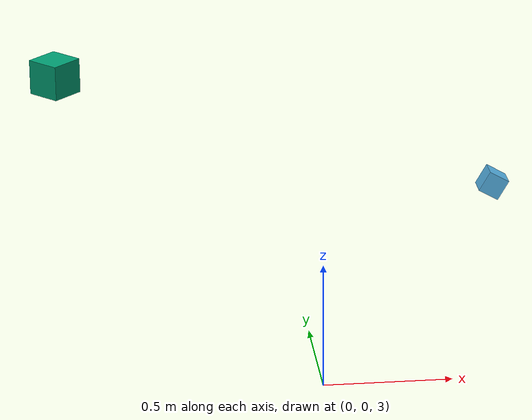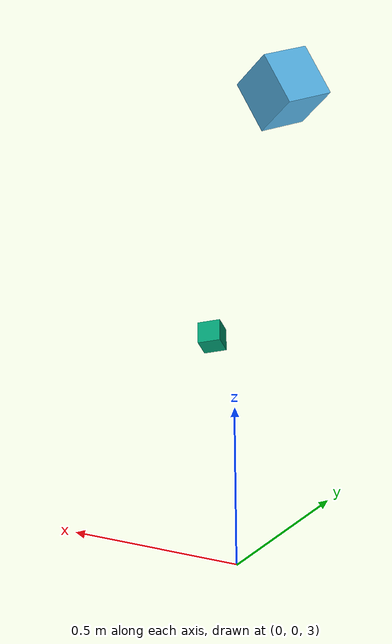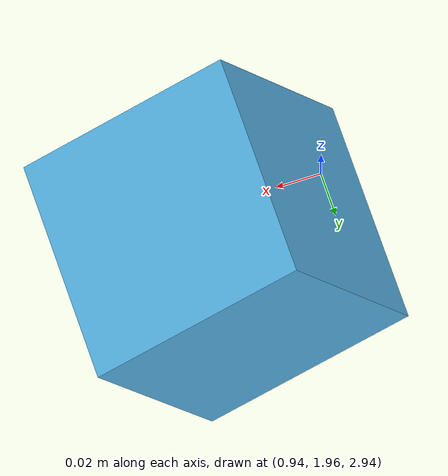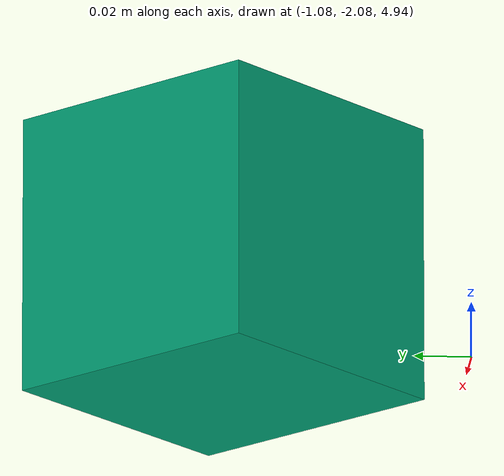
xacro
<?xml version="1.0"?>
<robot xmlns:xacro="http://ros.org/wiki/xacro" name="test_pose_rigid">

  <link name="world"/>

  <!-- ====================== probe_fixed ====================== -->
  <link name="probe_fixed">
    <inertial>
      <origin xyz="0 0 0" rpy="0 0 0"/>
      <mass value="1.0"/>
      <inertia ixx="0.01" ixy="0" ixz="0" iyy="0.02" iyz="0" izz="0.03"/>
    </inertial>
    <visual>
      <origin xyz="0 0 0" rpy="0 0 0"/>
      <geometry><box size="0.1 0.1 0.1"/></geometry>
    </visual>
  </link>
  <joint name="world_to_probe_fixed" type="fixed">
    <parent link="world"/>
    <child  link="probe_fixed"/>
    <origin xyz="1.0 2.0 3.0" rpy="0 0.5235987755982988 0"/>
  </joint>

  <!-- ====================== probe_float ====================== -->
  <link name="probe_float">
    <inertial>
      <origin xyz="0 0 0" rpy="0 0 0"/>
      <mass value="1.0"/>
      <inertia ixx="0.01" ixy="0" ixz="0" iyy="0.02" iyz="0" izz="0.03"/>
    </inertial>
    <visual>
      <origin xyz="0 0 0" rpy="0 0 0"/>
      <geometry><box size="0.1 0.1 0.1"/></geometry>
    </visual>
  </link>
  <joint name="world_to_probe_float" type="floating">
    <parent link="world"/>
    <child  link="probe_float"/>
    <origin xyz="-1.0 -2.0 5.0" rpy="0 0 0.7853981633974483"/>
  </joint>

  <!-- ====================== ros2_control ====================== -->
  <ros2_control name="ProbeHardware" type="system">
    <hardware><plugin>mujoco_ros2_control/MujocoSystem</plugin></hardware>

    <sensor name="probe_fixed_pose">
      <param name="body">probe_fixed</param>
      <state_interface name="position.x"/>
      <state_interface name="position.y"/>
      <state_interface name="position.z"/>
      <state_interface name="orientation.x"/>
      <state_interface name="orientation.y"/>
      <state_interface name="orientation.z"/>
      <state_interface name="orientation.w"/>
    </sensor>

    <sensor name="probe_float_pose">
      <param name="body">probe_float</param>
      <state_interface name="position.x"/>
      <state_interface name="position.y"/>
      <state_interface name="position.z"/>
      <state_interface name="orientation.x"/>
      <state_interface name="orientation.y"/>
      <state_interface name="orientation.z"/>
      <state_interface name="orientation.w"/>
    </sensor>

    <sensor name="site_probe_fixed_pose">
      <param name="site">probe_fixed_site</param>
      <state_interface name="position.x"/>
      <state_interface name="position.y"/>
      <state_interface name="position.z"/>
      <state_interface name="orientation.x"/>
      <state_interface name="orientation.y"/>
      <state_interface name="orientation.z"/>
      <state_interface name="orientation.w"/>
    </sensor>

    <sensor name="site_probe_float_pose">
      <param name="site">probe_float_site</param>
      <state_interface name="position.x"/>
      <state_interface name="position.y"/>
      <state_interface name="position.z"/>
      <state_interface name="orientation.x"/>
      <state_interface name="orientation.y"/>
      <state_interface name="orientation.z"/>
      <state_interface name="orientation.w"/>
    </sensor>
  </ros2_control>

  <!-- The body read/teleport services. Built into the simulation node before,
       a declared plugin now, so a model that wants them has to say so. -->
  <mujoco_ros2_plugin name="body_services" plugin="mujoco_ros2_control/BodyServices"/>

  <mujoco_ros2_plugin name="body_services_alt" plugin="mujoco_ros2_control/BodyServices">
    <param name="get_body_state_service">alt/get_body_state</param>
    <param name="set_body_pose_service">alt/set_body_pose</param>
  </mujoco_ros2_plugin>

  <xacro:arg name="with_camera" default="false"/>

  <!-- ====================== MuJoCo block ====================== -->
  <mujoco>
    <option gravity="0 0 0"/>

    <reference name="probe_fixed">
        <site name="probe_fixed_site" size="0.01" pos="0 0 0" />
    </reference>
    <reference name="probe_float">
        <site name="probe_float_site" size="0.01" pos="0 0 0" />
    </reference>

    <sensor>
      <framepos  objtype="xbody" objname="probe_fixed" reftype="body" refname="world" name="probe_fixed_pose"/>
      <framequat objtype="xbody" objname="probe_fixed" reftype="body" refname="world" name="probe_fixed_orientation"/>
      <framepos  objtype="xbody" objname="probe_float" reftype="body" refname="world" name="probe_float_pose"/>
      <framequat objtype="xbody" objname="probe_float" reftype="body" refname="world" name="probe_float_orientation"/>

      <framepos  objtype="site" objname="probe_fixed_site" reftype="body" refname="world" name="site_probe_fixed_pose"/>
      <framequat objtype="site" objname="probe_fixed_site" reftype="body" refname="world" name="site_probe_fixed_orientation"/>
      <framepos  objtype="site" objname="probe_float_site" reftype="body" refname="world" name="site_probe_float_pose"/>
      <framequat objtype="site" objname="probe_float_site" reftype="body" refname="world" name="site_probe_float_orientation"/>
    </sensor>
  </mujoco>

  <xacro:if value="$(arg with_camera)">
    <mujoco>
      <reference name="probe_fixed">
        <site name="sync_camera_optical" size="0.01" pos="0 0 0"/>
      </reference>
    </mujoco>

    <mujoco_ros2_plugin name="sync_camera" plugin="mujoco_ros2_control/DepthCameraSensor">
      <param name="site">sync_camera_optical</param>
    </mujoco_ros2_plugin>
  </xacro:if>
</robot>
